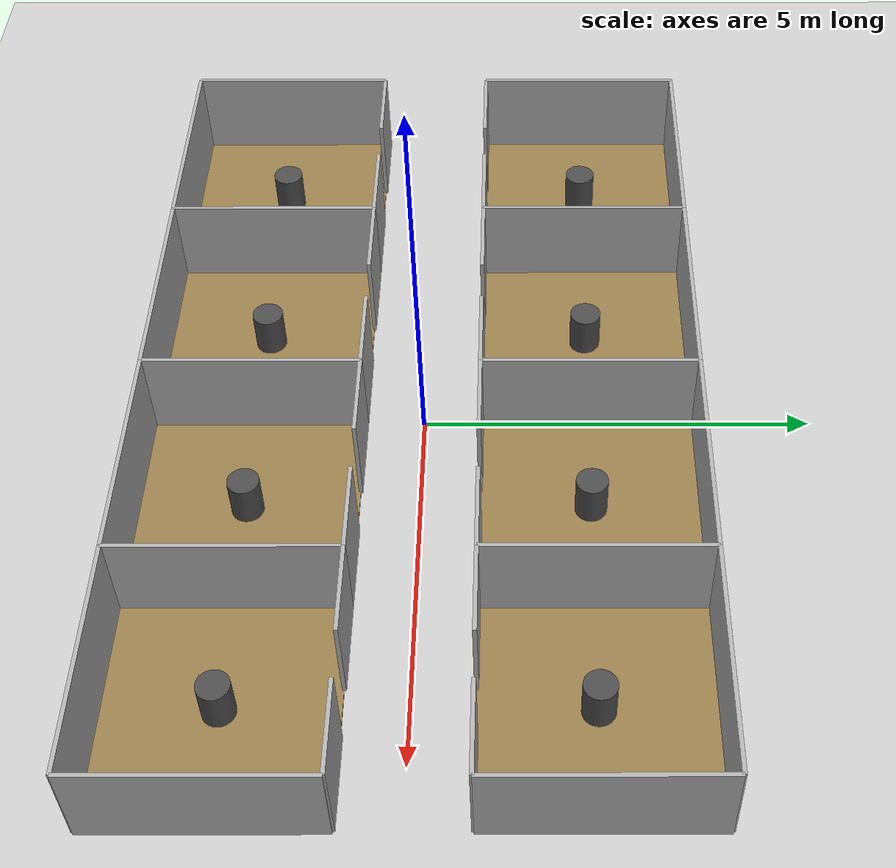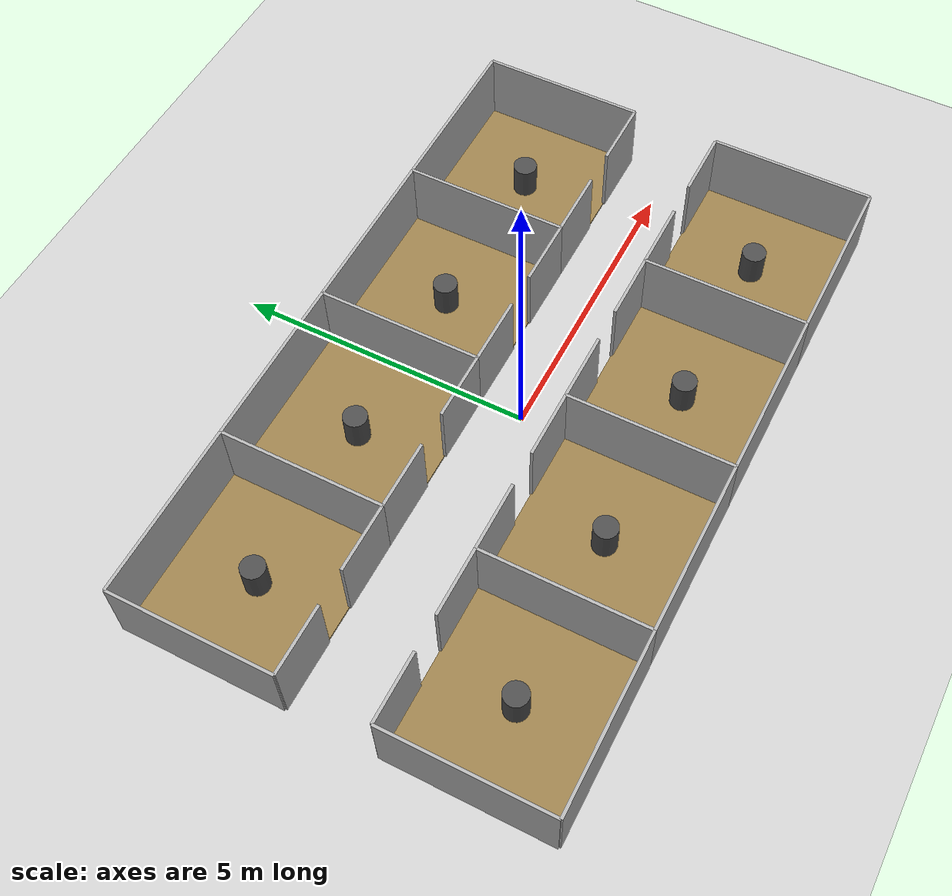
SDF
<?xml version='1.0' encoding='utf-8'?>
<sdf version="1.9"><world name="pig_pen_8units_world"><gravity>0 0 -9.8</gravity><magnetic_field>0 0 0</magnetic_field><atmosphere type="adiabatic" /><plugin filename="gz-sim-physics-system" name="gz::sim::systems::Physics" /><plugin filename="gz-sim-sensors-system" name="gz::sim::systems::Sensors"><render_engine>ogre2</render_engine></plugin><plugin filename="gz-sim-user-commands-system" name="gz::sim::systems::UserCommands" /><plugin filename="gz-sim-scene-broadcaster-system" name="gz::sim::systems::SceneBroadcaster" /><light name="sun" type="directional"><cast_shadows>true</cast_shadows><pose>0 0 10 0 0 0</pose><diffuse>0.9 0.9 0.9 1</diffuse><specular>0.2 0.2 0.2 1</specular><direction>-0.4 0.1 -1</direction></light><model name="ground_plane"><static>true</static><link name="link"><collision name="collision"><geometry><plane><normal>0 0 1</normal><size>20 20</size></plane></geometry></collision><visual name="visual"><geometry><plane><normal>0 0 1</normal><size>20 20</size></plane></geometry><material><ambient>0.8 0.8 0.8 1</ambient><diffuse>0.8 0.8 0.8 1</diffuse><specular>0.2 0.2 0.2 1</specular></material></visual></link></model><model name="pen1"><pose>-4.335 2.125 0 0 0 0</pose><static>true</static><link name="floor"><pose>0 0 0 0 0 0</pose><visual name="visual"><geometry><box><size>2.89 2.75 0.05</size></box></geometry><material><ambient>0.6 0.5 0.3 1</ambient><diffuse>0.6 0.5 0.3 1</diffuse></material></visual><collision name="collision"><geometry><box><size>2.89 2.75 0.05</size></box></geometry></collision></link><link name="left_wall"><pose>-1.445 0 0.61 0 0 0</pose><visual name="visual"><geometry><box><size>0.05 2.75 1.22</size></box></geometry><material><ambient>0.7 0.7 0.7 1</ambient><diffuse>0.7 0.7 0.7 1</diffuse></material></visual><collision name="collision"><geometry><box><size>0.05 2.75 1.22</size></box></geometry></collision></link><link name="right_wall"><pose>1.445 0 0.61 0 0 0</pose><visual name="visual"><geometry><box><size>0.05 2.75 1.22</size></box></geometry><material><ambient>0.7 0.7 0.7 1</ambient><diffuse>0.7 0.7 0.7 1</diffuse></material></visual><collision name="collision"><geometry><box><size>0.05 2.75 1.22</size></box></geometry></collision></link><link name="front_wall_left"><pose>-0.87 -1.375 0.61 0 0 0</pose><visual name="visual"><geometry><box><size>1.1500000000000001 0.05 1.22</size></box></geometry><material><ambient>0.7 0.7 0.7 1</ambient><diffuse>0.7 0.7 0.7 1</diffuse></material></visual><collision name="collision"><geometry><box><size>1.1500000000000001 0.05 1.22</size></box></geometry></collision></link><link name="front_wall_right"><pose>0.87 -1.375 0.61 0 0 0</pose><visual name="visual"><geometry><box><size>1.1500000000000001 0.05 1.22</size></box></geometry><material><ambient>0.7 0.7 0.7 1</ambient><diffuse>0.7 0.7 0.7 1</diffuse></material></visual><collision name="collision"><geometry><box><size>1.1500000000000001 0.05 1.22</size></box></geometry></collision></link><link name="back_wall"><pose>0 1.375 0.61 0 0 0</pose><visual name="visual"><geometry><box><size>2.89 0.05 1.22</size></box></geometry><material><ambient>0.7 0.7 0.7 1</ambient><diffuse>0.7 0.7 0.7 1</diffuse></material></visual><collision name="collision"><geometry><box><size>2.89 0.05 1.22</size></box></geometry></collision></link><link name="feeder"><pose>0 0 0.325 0 0 0</pose><visual name="visual"><geometry><cylinder><radius>0.20</radius><length>0.55</length></cylinder></geometry><material><ambient>0.3 0.3 0.3 1</ambient><diffuse>0.3 0.3 0.3 1</diffuse></material></visual><collision name="collision"><geometry><cylinder><radius>0.20</radius><length>0.55</length></cylinder></geometry></collision></link></model><model name="pen2"><pose>-1.445 2.125 0 0 0 0</pose><static>true</static><link name="floor"><pose>0 0 0 0 0 0</pose><visual name="visual"><geometry><box><size>2.89 2.75 0.05</size></box></geometry><material><ambient>0.6 0.5 0.3 1</ambient><diffuse>0.6 0.5 0.3 1</diffuse></material></visual><collision name="collision"><geometry><box><size>2.89 2.75 0.05</size></box></geometry></collision></link><link name="left_wall"><pose>-1.445 0 0.61 0 0 0</pose><visual name="visual"><geometry><box><size>0.05 2.75 1.22</size></box></geometry><material><ambient>0.7 0.7 0.7 1</ambient><diffuse>0.7 0.7 0.7 1</diffuse></material></visual><collision name="collision"><geometry><box><size>0.05 2.75 1.22</size></box></geometry></collision></link><link name="right_wall"><pose>1.445 0 0.61 0 0 0</pose><visual name="visual"><geometry><box><size>0.05 2.75 1.22</size></box></geometry><material><ambient>0.7 0.7 0.7 1</ambient><diffuse>0.7 0.7 0.7 1</diffuse></material></visual><collision name="collision"><geometry><box><size>0.05 2.75 1.22</size></box></geometry></collision></link><link name="front_wall_left"><pose>-0.87 -1.375 0.61 0 0 0</pose><visual name="visual"><geometry><box><size>1.1500000000000001 0.05 1.22</size></box></geometry><material><ambient>0.7 0.7 0.7 1</ambient><diffuse>0.7 0.7 0.7 1</diffuse></material></visual><collision name="collision"><geometry><box><size>1.1500000000000001 0.05 1.22</size></box></geometry></collision></link><link name="front_wall_right"><pose>0.87 -1.375 0.61 0 0 0</pose><visual name="visual"><geometry><box><size>1.1500000000000001 0.05 1.22</size></box></geometry><material><ambient>0.7 0.7 0.7 1</ambient><diffuse>0.7 0.7 0.7 1</diffuse></material></visual><collision name="collision"><geometry><box><size>1.1500000000000001 0.05 1.22</size></box></geometry></collision></link><link name="back_wall"><pose>0 1.375 0.61 0 0 0</pose><visual name="visual"><geometry><box><size>2.89 0.05 1.22</size></box></geometry><material><ambient>0.7 0.7 0.7 1</ambient><diffuse>0.7 0.7 0.7 1</diffuse></material></visual><collision name="collision"><geometry><box><size>2.89 0.05 1.22</size></box></geometry></collision></link><link name="feeder"><pose>0 0 0.325 0 0 0</pose><visual name="visual"><geometry><cylinder><radius>0.20</radius><length>0.55</length></cylinder></geometry><material><ambient>0.3 0.3 0.3 1</ambient><diffuse>0.3 0.3 0.3 1</diffuse></material></visual><collision name="collision"><geometry><cylinder><radius>0.20</radius><length>0.55</length></cylinder></geometry></collision></link></model><model name="pen3"><pose>1.445 2.125 0 0 0 0</pose><static>true</static><link name="floor"><pose>0 0 0 0 0 0</pose><visual name="visual"><geometry><box><size>2.89 2.75 0.05</size></box></geometry><material><ambient>0.6 0.5 0.3 1</ambient><diffuse>0.6 0.5 0.3 1</diffuse></material></visual><collision name="collision"><geometry><box><size>2.89 2.75 0.05</size></box></geometry></collision></link><link name="left_wall"><pose>-1.445 0 0.61 0 0 0</pose><visual name="visual"><geometry><box><size>0.05 2.75 1.22</size></box></geometry><material><ambient>0.7 0.7 0.7 1</ambient><diffuse>0.7 0.7 0.7 1</diffuse></material></visual><collision name="collision"><geometry><box><size>0.05 2.75 1.22</size></box></geometry></collision></link><link name="right_wall"><pose>1.445 0 0.61 0 0 0</pose><visual name="visual"><geometry><box><size>0.05 2.75 1.22</size></box></geometry><material><ambient>0.7 0.7 0.7 1</ambient><diffuse>0.7 0.7 0.7 1</diffuse></material></visual><collision name="collision"><geometry><box><size>0.05 2.75 1.22</size></box></geometry></collision></link><link name="front_wall_left"><pose>-0.87 -1.375 0.61 0 0 0</pose><visual name="visual"><geometry><box><size>1.1500000000000001 0.05 1.22</size></box></geometry><material><ambient>0.7 0.7 0.7 1</ambient><diffuse>0.7 0.7 0.7 1</diffuse></material></visual><collision name="collision"><geometry><box><size>1.1500000000000001 0.05 1.22</size></box></geometry></collision></link><link name="front_wall_right"><pose>0.87 -1.375 0.61 0 0 0</pose><visual name="visual"><geometry><box><size>1.1500000000000001 0.05 1.22</size></box></geometry><material><ambient>0.7 0.7 0.7 1</ambient><diffuse>0.7 0.7 0.7 1</diffuse></material></visual><collision name="collision"><geometry><box><size>1.1500000000000001 0.05 1.22</size></box></geometry></collision></link><link name="back_wall"><pose>0 1.375 0.61 0 0 0</pose><visual name="visual"><geometry><box><size>2.89 0.05 1.22</size></box></geometry><material><ambient>0.7 0.7 0.7 1</ambient><diffuse>0.7 0.7 0.7 1</diffuse></material></visual><collision name="collision"><geometry><box><size>2.89 0.05 1.22</size></box></geometry></collision></link><link name="feeder"><pose>0 0 0.325 0 0 0</pose><visual name="visual"><geometry><cylinder><radius>0.20</radius><length>0.55</length></cylinder></geometry><material><ambient>0.3 0.3 0.3 1</ambient><diffuse>0.3 0.3 0.3 1</diffuse></material></visual><collision name="collision"><geometry><cylinder><radius>0.20</radius><length>0.55</length></cylinder></geometry></collision></link></model><model name="pen4"><pose>4.335 2.125 0 0 0 0</pose><static>true</static><link name="floor"><pose>0 0 0 0 0 0</pose><visual name="visual"><geometry><box><size>2.89 2.75 0.05</size></box></geometry><material><ambient>0.6 0.5 0.3 1</ambient><diffuse>0.6 0.5 0.3 1</diffuse></material></visual><collision name="collision"><geometry><box><size>2.89 2.75 0.05</size></box></geometry></collision></link><link name="left_wall"><pose>-1.445 0 0.61 0 0 0</pose><visual name="visual"><geometry><box><size>0.05 2.75 1.22</size></box></geometry><material><ambient>0.7 0.7 0.7 1</ambient><diffuse>0.7 0.7 0.7 1</diffuse></material></visual><collision name="collision"><geometry><box><size>0.05 2.75 1.22</size></box></geometry></collision></link><link name="right_wall"><pose>1.445 0 0.61 0 0 0</pose><visual name="visual"><geometry><box><size>0.05 2.75 1.22</size></box></geometry><material><ambient>0.7 0.7 0.7 1</ambient><diffuse>0.7 0.7 0.7 1</diffuse></material></visual><collision name="collision"><geometry><box><size>0.05 2.75 1.22</size></box></geometry></collision></link><link name="front_wall_left"><pose>-0.87 -1.375 0.61 0 0 0</pose><visual name="visual"><geometry><box><size>1.1500000000000001 0.05 1.22</size></box></geometry><material><ambient>0.7 0.7 0.7 1</ambient><diffuse>0.7 0.7 0.7 1</diffuse></material></visual><collision name="collision"><geometry><box><size>1.1500000000000001 0.05 1.22</size></box></geometry></collision></link><link name="front_wall_right"><pose>0.87 -1.375 0.61 0 0 0</pose><visual name="visual"><geometry><box><size>1.1500000000000001 0.05 1.22</size></box></geometry><material><ambient>0.7 0.7 0.7 1</ambient><diffuse>0.7 0.7 0.7 1</diffuse></material></visual><collision name="collision"><geometry><box><size>1.1500000000000001 0.05 1.22</size></box></geometry></collision></link><link name="back_wall"><pose>0 1.375 0.61 0 0 0</pose><visual name="visual"><geometry><box><size>2.89 0.05 1.22</size></box></geometry><material><ambient>0.7 0.7 0.7 1</ambient><diffuse>0.7 0.7 0.7 1</diffuse></material></visual><collision name="collision"><geometry><box><size>2.89 0.05 1.22</size></box></geometry></collision></link><link name="feeder"><pose>0 0 0.325 0 0 0</pose><visual name="visual"><geometry><cylinder><radius>0.20</radius><length>0.55</length></cylinder></geometry><material><ambient>0.3 0.3 0.3 1</ambient><diffuse>0.3 0.3 0.3 1</diffuse></material></visual><collision name="collision"><geometry><cylinder><radius>0.20</radius><length>0.55</length></cylinder></geometry></collision></link></model><model name="pen5"><pose>-4.335 -2.125 0 0 0 0</pose><static>true</static><link name="floor"><pose>0 0 0 0 0 0</pose><visual name="visual"><geometry><box><size>2.89 2.75 0.05</size></box></geometry><material><ambient>0.6 0.5 0.3 1</ambient><diffuse>0.6 0.5 0.3 1</diffuse></material></visual><collision name="collision"><geometry><box><size>2.89 2.75 0.05</size></box></geometry></collision></link><link name="left_wall"><pose>-1.445 0 0.61 0 0 0</pose><visual name="visual"><geometry><box><size>0.05 2.75 1.22</size></box></geometry><material><ambient>0.7 0.7 0.7 1</ambient><diffuse>0.7 0.7 0.7 1</diffuse></material></visual><collision name="collision"><geometry><box><size>0.05 2.75 1.22</size></box></geometry></collision></link><link name="right_wall"><pose>1.445 0 0.61 0 0 0</pose><visual name="visual"><geometry><box><size>0.05 2.75 1.22</size></box></geometry><material><ambient>0.7 0.7 0.7 1</ambient><diffuse>0.7 0.7 0.7 1</diffuse></material></visual><collision name="collision"><geometry><box><size>0.05 2.75 1.22</size></box></geometry></collision></link><link name="back_wall_left"><pose>-0.87 1.375 0.61 0 0 0</pose><visual name="visual"><geometry><box><size>1.1500000000000001 0.05 1.22</size></box></geometry><material><ambient>0.7 0.7 0.7 1</ambient><diffuse>0.7 0.7 0.7 1</diffuse></material></visual><collision name="collision"><geometry><box><size>1.1500000000000001 0.05 1.22</size></box></geometry></collision></link><link name="back_wall_right"><pose>0.87 1.375 0.61 0 0 0</pose><visual name="visual"><geometry><box><size>1.1500000000000001 0.05 1.22</size></box></geometry><material><ambient>0.7 0.7 0.7 1</ambient><diffuse>0.7 0.7 0.7 1</diffuse></material></visual><collision name="collision"><geometry><box><size>1.1500000000000001 0.05 1.22</size></box></geometry></collision></link><link name="front_wall"><pose>0 -1.375 0.61 0 0 0</pose><visual name="visual"><geometry><box><size>2.89 0.05 1.22</size></box></geometry><material><ambient>0.7 0.7 0.7 1</ambient><diffuse>0.7 0.7 0.7 1</diffuse></material></visual><collision name="collision"><geometry><box><size>2.89 0.05 1.22</size></box></geometry></collision></link><link name="feeder"><pose>0 0 0.325 0 0 0</pose><visual name="visual"><geometry><cylinder><radius>0.20</radius><length>0.55</length></cylinder></geometry><material><ambient>0.3 0.3 0.3 1</ambient><diffuse>0.3 0.3 0.3 1</diffuse></material></visual><collision name="collision"><geometry><cylinder><radius>0.20</radius><length>0.55</length></cylinder></geometry></collision></link></model><model name="pen6"><pose>-1.445 -2.125 0 0 0 0</pose><static>true</static><link name="floor"><pose>0 0 0 0 0 0</pose><visual name="visual"><geometry><box><size>2.89 2.75 0.05</size></box></geometry><material><ambient>0.6 0.5 0.3 1</ambient><diffuse>0.6 0.5 0.3 1</diffuse></material></visual><collision name="collision"><geometry><box><size>2.89 2.75 0.05</size></box></geometry></collision></link><link name="left_wall"><pose>-1.445 0 0.61 0 0 0</pose><visual name="visual"><geometry><box><size>0.05 2.75 1.22</size></box></geometry><material><ambient>0.7 0.7 0.7 1</ambient><diffuse>0.7 0.7 0.7 1</diffuse></material></visual><collision name="collision"><geometry><box><size>0.05 2.75 1.22</size></box></geometry></collision></link><link name="right_wall"><pose>1.445 0 0.61 0 0 0</pose><visual name="visual"><geometry><box><size>0.05 2.75 1.22</size></box></geometry><material><ambient>0.7 0.7 0.7 1</ambient><diffuse>0.7 0.7 0.7 1</diffuse></material></visual><collision name="collision"><geometry><box><size>0.05 2.75 1.22</size></box></geometry></collision></link><link name="back_wall_left"><pose>-0.87 1.375 0.61 0 0 0</pose><visual name="visual"><geometry><box><size>1.1500000000000001 0.05 1.22</size></box></geometry><material><ambient>0.7 0.7 0.7 1</ambient><diffuse>0.7 0.7 0.7 1</diffuse></material></visual><collision name="collision"><geometry><box><size>1.1500000000000001 0.05 1.22</size></box></geometry></collision></link><link name="back_wall_right"><pose>0.87 1.375 0.61 0 0 0</pose><visual name="visual"><geometry><box><size>1.1500000000000001 0.05 1.22</size></box></geometry><material><ambient>0.7 0.7 0.7 1</ambient><diffuse>0.7 0.7 0.7 1</diffuse></material></visual><collision name="collision"><geometry><box><size>1.1500000000000001 0.05 1.22</size></box></geometry></collision></link><link name="front_wall"><pose>0 -1.375 0.61 0 0 0</pose><visual name="visual"><geometry><box><size>2.89 0.05 1.22</size></box></geometry><material><ambient>0.7 0.7 0.7 1</ambient><diffuse>0.7 0.7 0.7 1</diffuse></material></visual><collision name="collision"><geometry><box><size>2.89 0.05 1.22</size></box></geometry></collision></link><link name="feeder"><pose>0 0 0.325 0 0 0</pose><visual name="visual"><geometry><cylinder><radius>0.20</radius><length>0.55</length></cylinder></geometry><material><ambient>0.3 0.3 0.3 1</ambient><diffuse>0.3 0.3 0.3 1</diffuse></material></visual><collision name="collision"><geometry><cylinder><radius>0.20</radius><length>0.55</length></cylinder></geometry></collision></link></model><model name="pen7"><pose>1.445 -2.125 0 0 0 0</pose><static>true</static><link name="floor"><pose>0 0 0 0 0 0</pose><visual name="visual"><geometry><box><size>2.89 2.75 0.05</size></box></geometry><material><ambient>0.6 0.5 0.3 1</ambient><diffuse>0.6 0.5 0.3 1</diffuse></material></visual><collision name="collision"><geometry><box><size>2.89 2.75 0.05</size></box></geometry></collision></link><link name="left_wall"><pose>-1.445 0 0.61 0 0 0</pose><visual name="visual"><geometry><box><size>0.05 2.75 1.22</size></box></geometry><material><ambient>0.7 0.7 0.7 1</ambient><diffuse>0.7 0.7 0.7 1</diffuse></material></visual><collision name="collision"><geometry><box><size>0.05 2.75 1.22</size></box></geometry></collision></link><link name="right_wall"><pose>1.445 0 0.61 0 0 0</pose><visual name="visual"><geometry><box><size>0.05 2.75 1.22</size></box></geometry><material><ambient>0.7 0.7 0.7 1</ambient><diffuse>0.7 0.7 0.7 1</diffuse></material></visual><collision name="collision"><geometry><box><size>0.05 2.75 1.22</size></box></geometry></collision></link><link name="back_wall_left"><pose>-0.87 1.375 0.61 0 0 0</pose><visual name="visual"><geometry><box><size>1.1500000000000001 0.05 1.22</size></box></geometry><material><ambient>0.7 0.7 0.7 1</ambient><diffuse>0.7 0.7 0.7 1</diffuse></material></visual><collision name="collision"><geometry><box><size>1.1500000000000001 0.05 1.22</size></box></geometry></collision></link><link name="back_wall_right"><pose>0.87 1.375 0.61 0 0 0</pose><visual name="visual"><geometry><box><size>1.1500000000000001 0.05 1.22</size></box></geometry><material><ambient>0.7 0.7 0.7 1</ambient><diffuse>0.7 0.7 0.7 1</diffuse></material></visual><collision name="collision"><geometry><box><size>1.1500000000000001 0.05 1.22</size></box></geometry></collision></link><link name="front_wall"><pose>0 -1.375 0.61 0 0 0</pose><visual name="visual"><geometry><box><size>2.89 0.05 1.22</size></box></geometry><material><ambient>0.7 0.7 0.7 1</ambient><diffuse>0.7 0.7 0.7 1</diffuse></material></visual><collision name="collision"><geometry><box><size>2.89 0.05 1.22</size></box></geometry></collision></link><link name="feeder"><pose>0 0 0.325 0 0 0</pose><visual name="visual"><geometry><cylinder><radius>0.20</radius><length>0.55</length></cylinder></geometry><material><ambient>0.3 0.3 0.3 1</ambient><diffuse>0.3 0.3 0.3 1</diffuse></material></visual><collision name="collision"><geometry><cylinder><radius>0.20</radius><length>0.55</length></cylinder></geometry></collision></link></model><model name="pen8"><pose>4.335 -2.125 0 0 0 0</pose><static>true</static><link name="floor"><pose>0 0 0 0 0 0</pose><visual name="visual"><geometry><box><size>2.89 2.75 0.05</size></box></geometry><material><ambient>0.6 0.5 0.3 1</ambient><diffuse>0.6 0.5 0.3 1</diffuse></material></visual><collision name="collision"><geometry><box><size>2.89 2.75 0.05</size></box></geometry></collision></link><link name="left_wall"><pose>-1.445 0 0.61 0 0 0</pose><visual name="visual"><geometry><box><size>0.05 2.75 1.22</size></box></geometry><material><ambient>0.7 0.7 0.7 1</ambient><diffuse>0.7 0.7 0.7 1</diffuse></material></visual><collision name="collision"><geometry><box><size>0.05 2.75 1.22</size></box></geometry></collision></link><link name="right_wall"><pose>1.445 0 0.61 0 0 0</pose><visual name="visual"><geometry><box><size>0.05 2.75 1.22</size></box></geometry><material><ambient>0.7 0.7 0.7 1</ambient><diffuse>0.7 0.7 0.7 1</diffuse></material></visual><collision name="collision"><geometry><box><size>0.05 2.75 1.22</size></box></geometry></collision></link><link name="back_wall_left"><pose>-0.87 1.375 0.61 0 0 0</pose><visual name="visual"><geometry><box><size>1.1500000000000001 0.05 1.22</size></box></geometry><material><ambient>0.7 0.7 0.7 1</ambient><diffuse>0.7 0.7 0.7 1</diffuse></material></visual><collision name="collision"><geometry><box><size>1.1500000000000001 0.05 1.22</size></box></geometry></collision></link><link name="back_wall_right"><pose>0.87 1.375 0.61 0 0 0</pose><visual name="visual"><geometry><box><size>1.1500000000000001 0.05 1.22</size></box></geometry><material><ambient>0.7 0.7 0.7 1</ambient><diffuse>0.7 0.7 0.7 1</diffuse></material></visual><collision name="collision"><geometry><box><size>1.1500000000000001 0.05 1.22</size></box></geometry></collision></link><link name="front_wall"><pose>0 -1.375 0.61 0 0 0</pose><visual name="visual"><geometry><box><size>2.89 0.05 1.22</size></box></geometry><material><ambient>0.7 0.7 0.7 1</ambient><diffuse>0.7 0.7 0.7 1</diffuse></material></visual><collision name="collision"><geometry><box><size>2.89 0.05 1.22</size></box></geometry></collision></link><link name="feeder"><pose>0 0 0.325 0 0 0</pose><visual name="visual"><geometry><cylinder><radius>0.20</radius><length>0.55</length></cylinder></geometry><material><ambient>0.3 0.3 0.3 1</ambient><diffuse>0.3 0.3 0.3 1</diffuse></material></visual><collision name="collision"><geometry><cylinder><radius>0.20</radius><length>0.55</length></cylinder></geometry></collision></link></model></world></sdf>
